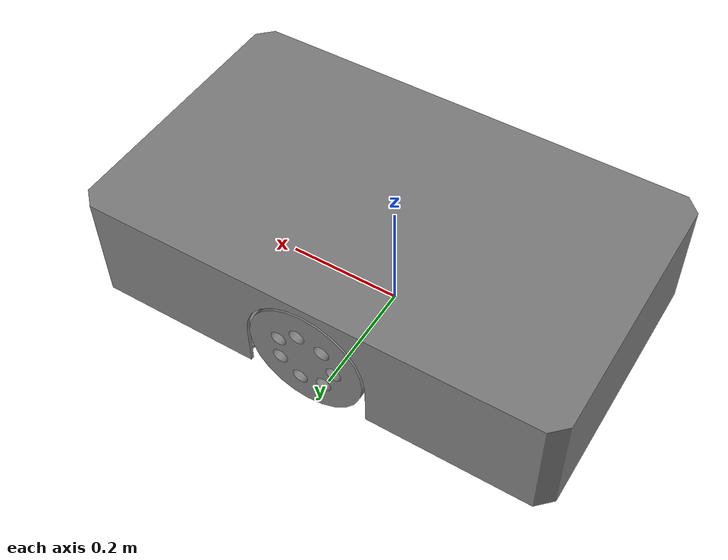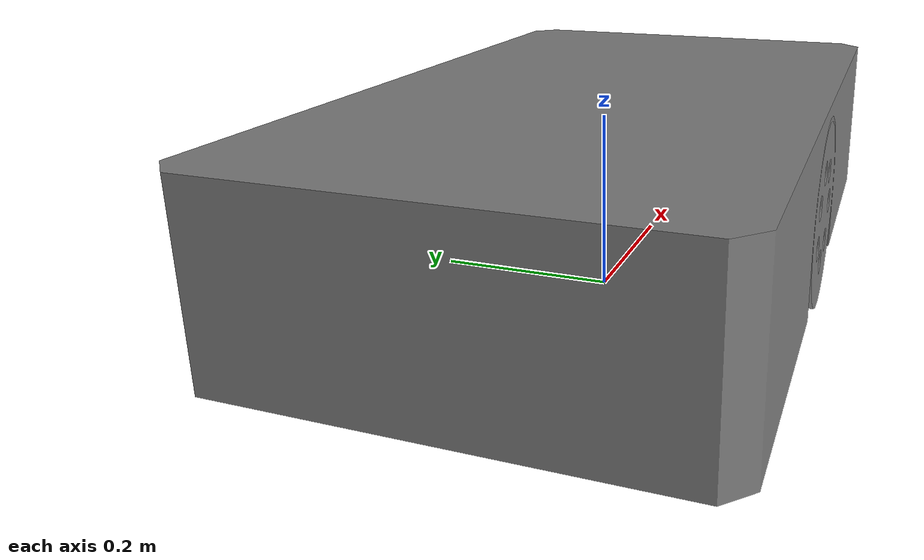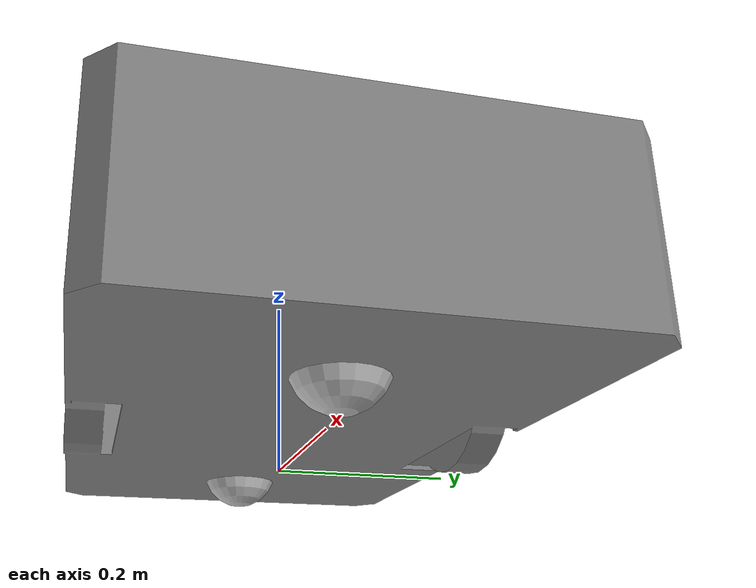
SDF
<?xml version='1.0'?>
<sdf version='1.4'>
  <model name="ITU_AGV_2">
  <static>false</static>

   <link name="base_link_2">
   <pose>0 0 0.12 0 0 0</pose>
   <mass>5</mass>

   <inertial>
        <mass>5.67</mass>
        <inertia>
          <ixx>0.07</ixx>
          <iyy>0.08</iyy>
          <izz>0.10</izz>
          <ixy>0</ixy>
          <ixz>0</ixz>
          <iyz>0</iyz>
        </inertia>
      </inertial>

   <collision name='collision'>
      <pose>0 0 -0.11 0 0 -1.571</pose>
      <geometry>
         <mesh><uri>model://itu_agv_2/meshes/agv.stl</uri></mesh>
      </geometry>
   </collision>

      <visual name="visual">
      <pose>0 0 -0.11 0 0 -1.571</pose>
      <geometry>
         <mesh><uri>model://itu_agv_2/meshes/agv.stl</uri></mesh>
      </geometry>
   	<material>
	 <ambient>0.5 0.5 0.5 1</ambient>
	 <diffuse>0.5 0.5 0.5 1</diffuse>
	 <specular>0.1 0.1 0.1 1</specular>
	 <emissive>0 0 0 0</emissive>
        </material>
   </visual>

   <collision name='front_caster_collision'>
	<pose>0.25 0 -0.07 0 0 0</pose>
            <geometry>
                <sphere>
                <radius>.05</radius>
              </sphere>
            </geometry>

	 <surface>
              <friction>
                <ode>
                  <mu>0</mu>
                  <mu2>0</mu2>
                  <slip1>1.0</slip1>
                  <slip2>1.0</slip2>
                </ode>
              </friction>
            </surface>
          </collision>

	 <visual name='front_caster_visual'>
            <pose>0.25 0 -0.07 0 0 0</pose>
            <geometry>
              <sphere>
                <radius>.05</radius>
              </sphere>
            </geometry>
          </visual>

        <collision name='back_caster_collision'>
	<pose>-0.25 0 -0.07 0 0 0</pose>
            <geometry>
                <sphere>
                <radius>.05</radius>
              </sphere>
            </geometry>

	 <surface>
              <friction>
                <ode>
                  <mu>0</mu>
                  <mu2>0</mu2>
                  <slip1>1.0</slip1>
                  <slip2>1.0</slip2>
                </ode>
              </friction>
            </surface>
          </collision>

	 <visual name='back_caster_visual'>
            <pose>-0.25 0 -0.07 0 0 0</pose>
            <geometry>
              <sphere>
                <radius>.05</radius>
              </sphere>
            </geometry>
          </visual>

  </link>

  <link name="base_footprint_2">
   <pose>0 0 0 0 0 0 </pose>
    </link>
    <joint name="base_joint" type="fixed">
      <pose>0 0 0 0 0 0 </pose>
      <parent link="base_footprint_2"/>
      <child link="base_link_2"/>
    </joint>

  <link name="wheel_left">
    <pose>0 0.22 0.1 1.571 0 0 </pose>
    <collision name="collision">
      <geometry>
         <cylinder>
             <radius>.1</radius>
	     <length>.05</length>
         </cylinder>
      </geometry>
   </collision>
  </link>

  <joint type="revolute" name="base_to_wheel_left">
       <pose>0 0 0 0 0 0</pose>
        <child>wheel_left</child>
        <parent>base_link_2</parent>
        <axis>
          <xyz>0 1 0</xyz>
        </axis>
      </joint>

    <link name="wheel_right">
    <pose>0 -0.22 0.1 1.571 0 0 </pose>
    <collision name="collision">
      <geometry>
         <cylinder>
             <radius>.1</radius>
	     <length>.05</length>
         </cylinder>
      </geometry>
   </collision>

  </link>

   <joint type="revolute" name="base_to_wheel_right">
        <pose>0 0 0 0 0 0</pose>
        <child>wheel_right</child>
        <parent>base_link_2</parent>
        <axis>
          <xyz>0 1 0</xyz>
        </axis>
      </joint>

	<plugin name="differential_drive_controller" filename="libgazebo_ros_diff_drive.so">
 		<alwaysOn>true</alwaysOn>
 		<updateRate>20</updateRate>
 		<leftJoint>base_to_wheel_left</leftJoint>
 		<rightJoint>base_to_wheel_right</rightJoint>
 		<wheelSeparation>0.4</wheelSeparation>
 		<wheelDiameter>0.2</wheelDiameter>
 		<torque>20</torque>
 		<commandTopic>cmd_vel_2</commandTopic>
 		<odometryTopic>odom</odometryTopic>
 		<odometryFrame>odom</odometryFrame>
 		<robotBaseFrame>base_footprint_2</robotBaseFrame>
 	</plugin>

  </model>
</sdf>
